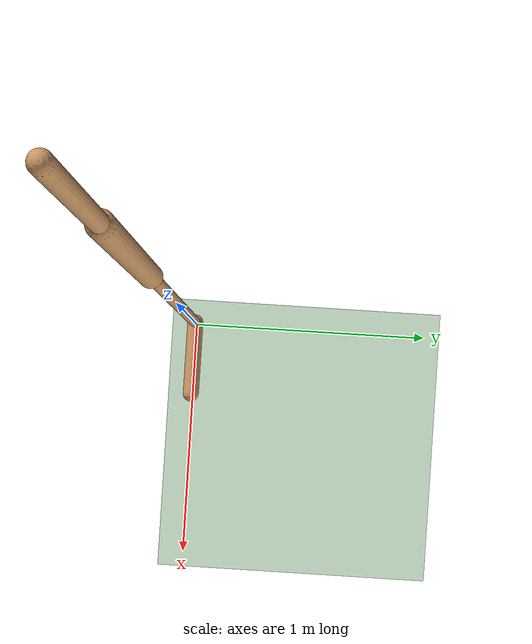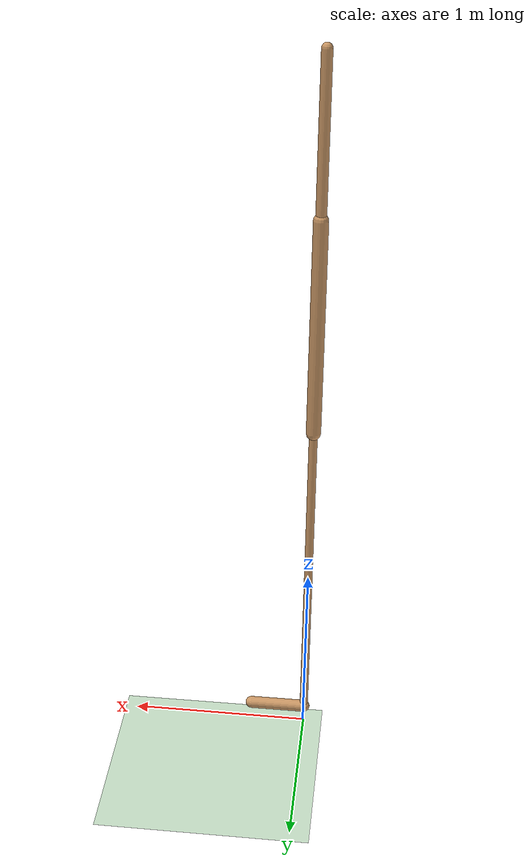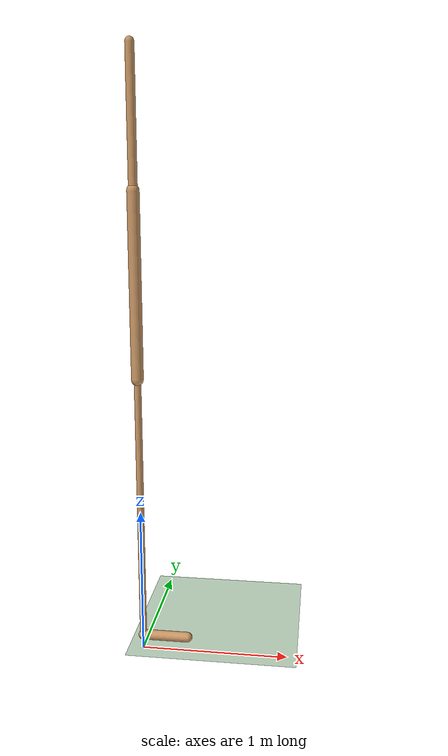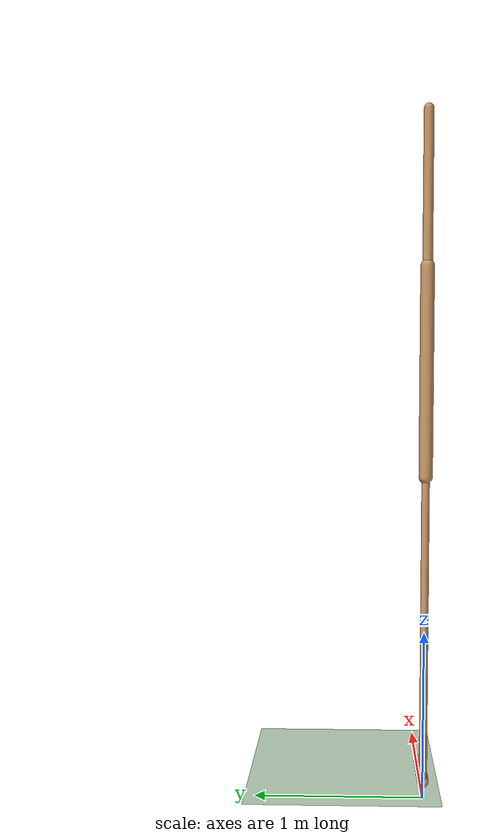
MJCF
<mujoco model="walker2d">
  <compiler angle="degree" inertiafromgeom="true" />
  <default>
    <joint armature="0.01" damping=".1" limited="true" />
    <geom conaffinity="0" condim="3" contype="1" density="1000" friction=".7 .1 .1" rgba="0.8 0.6 .4 1" />
  </default>
  <option integrator="RK4" timestep="0.002" />
  <worldbody>
    <light cutoff="100" diffuse="1 1 1" dir="-0 0 -1.3" directional="true" exponent="1" pos="0 0 1.3" specular=".1 .1 .1" />
    <geom conaffinity="1" condim="3" name="floor" pos="0 0 0" rgba="0.8 0.9 0.8 1" size="40 40 40" type="plane" material="MatPlane" />
    <body name="torso" pos="0 0 3.5518678188323975">
      <camera name="track" mode="trackcom" pos="0 -5 -1.25" xyaxes="1 0 0 0 0 1" />
      <joint armature="0" axis="1 0 0" damping="0" limited="false" name="rootx" pos="0 0 -1.25" stiffness="0" type="slide" />
      <joint armature="0" axis="0 0 1" damping="0" limited="false" name="rootz" pos="0 0 -1.25" ref="1.25" stiffness="0" type="slide" />
      <joint armature="0" axis="0 1 0" damping="0" limited="false" name="rooty" pos="0 0 0" stiffness="0" type="hinge" />
      <geom friction="0.9" name="torso_geom" size="0.02884545922279358 0.4320857524871826" type="capsule" />
      <body name="thigh" pos="0 0 -0.4320857524871826">
        <joint axis="0 -1 0" name="thigh_joint" pos="0 0 0" range="-150 0" type="hinge" />
        <site name="torso_thigh_site" pos="0 0 0" size="0.01" type="sphere" rgba="1 0 0 0.5" />
        <geom friction="0.9" pos="0 0 -0.6005195379257202" name="thigh_geom" size="0.03998985141515732 0.6005195379257202" type="capsule" />
        <body name="leg" pos="0 0 -2.1104105710983276">
          <joint axis="0 -1 0" name="leg_joint" pos="0 0 0.9093714952468872" range="-150 0" type="hinge" />
          <site name="thigh_leg_site" pos="0 0 0.25" size="0.01" type="sphere" rgba="1 0 0 0.5" />
          <geom friction="0.9" name="leg_geom" size="0.02305068075656891 0.9093714952468872" type="capsule" />
          <body name="foot" pos="0.31015491485595703 0 -1.0093714952468873">
            <joint axis="0 -1 0" name="foot_joint" pos="-0.31015491485595703 0 0.1" range="-45 45" type="hinge" />
            <site name="leg_foot_site" pos="-0.2 0 0.1" size="0.01" type="sphere" rgba="1 0 0 0.5" />
            <geom friction="0.9" pos="-0.15507745742797852 0 0.1" quat="0.70710678118654757 0 -0.70710678118654746 0" name="foot_geom" size="0.03403127193450928 0.15507745742797852" type="capsule" />
          </body>
        </body>
      </body>

      <body name="thigh_left" pos="0 0 -0.4320857524871826">
        <joint axis="0 -1 0" name="thigh_left_joint" pos="0 0 0" range="-150 0" type="hinge" />
        <site name="torso_thigh_left_site" pos="0 0 0" size="0.01" type="sphere" rgba="1 0 0 0.5" />
        <geom friction="0.9" name="thigh_left_geom" rgba=".7 .3 .6 1" size="0.03998985141515732 0.6005195379257202" pos="0 0 -0.6005195379257202" type="capsule" />
        <body name="leg_left" pos="0 0 -2.1104105710983276">
          <joint axis="0 -1 0" name="leg_left_joint" pos="0 0 0.9093714952468872" range="-150 0" type="hinge" />
          <site name="thigh_leg_left_site" pos="0 0 0.25" size="0.01" type="sphere" rgba="1 0 0 0.5" />
          <geom friction="0.9" name="leg_left_geom" rgba=".7 .3 .6 1" size="0.02305068075656891 0.9093714952468872" type="capsule" />
          <body name="foot_left" pos="0.31015491485595703 0 -1.0093714952468873">
            <joint axis="0 -1 0" name="foot_left_joint" pos="-0.31015491485595703 0 0.1" range="-45 45" type="hinge" />
            <site name="leg_foot_left_site" pos="-0.2 0 0.1" size="0.01" type="sphere" rgba="1 0 0 0.5" />
            <geom friction="1.9" name="foot_left_geom" rgba=".7 .3 .6 1" size="0.03403127193450928 0.15507745742797852" pos="-0.15507745742797852 0 0.1" type="capsule" quat="0.70710678118654757 0 -0.70710678118654746 0" />
          </body>
        </body>
      </body>
    </body>
  </worldbody>
  <actuator>

    <motor ctrllimited="true" ctrlrange="-1.0 1.0" gear="170.7277810937777" joint="thigh_joint" />
    <motor ctrllimited="true" ctrlrange="-1.0 1.0" gear="120.79497199234332" joint="leg_joint" />
    <motor ctrllimited="true" ctrlrange="-1.0 1.0" gear="49.88873981792712" joint="foot_joint" />
    <motor ctrllimited="true" ctrlrange="-1.0 1.0" gear="170.7277810937777" joint="thigh_left_joint" />
    <motor ctrllimited="true" ctrlrange="-1.0 1.0" gear="120.79497199234332" joint="leg_left_joint" />
    <motor ctrllimited="true" ctrlrange="-1.0 1.0" gear="49.88873981792712" joint="foot_left_joint" />

  </actuator>
    <asset>
        <texture type="skybox" builtin="gradient" rgb1=".4 .5 .6" rgb2="0 0 0" width="100" height="100" />
        <texture builtin="flat" height="1278" mark="cross" markrgb="1 1 1" name="texgeom" random="0.01" rgb1="0.8 0.6 0.4" rgb2="0.8 0.6 0.4" type="cube" width="127" />
        <texture builtin="checker" height="100" name="texplane" rgb1="0 0 0" rgb2="0.8 0.8 0.8" type="2d" width="100" />
        <material name="MatPlane" reflectance="0.5" shininess="1" specular="1" texrepeat="60 60" texture="texplane" />
        <material name="geom" texture="texgeom" texuniform="true" />
    </asset>

  <sensor>
    <force site="torso_thigh_site" name="torso_thigh_sensor" />
    <force site="thigh_leg_site" name="thigh_leg_sensor" />
    <force site="leg_foot_site" name="leg_foot_sensor" />
    <force site="torso_thigh_left_site" name="torso_thigh_left_sensor" />
    <force site="thigh_leg_left_site" name="thigh_leg_left_sensor" />
    <force site="leg_foot_left_site" name="leg_foot_left_sensor" />
  </sensor>
</mujoco>
